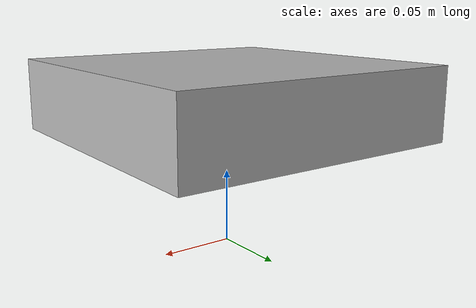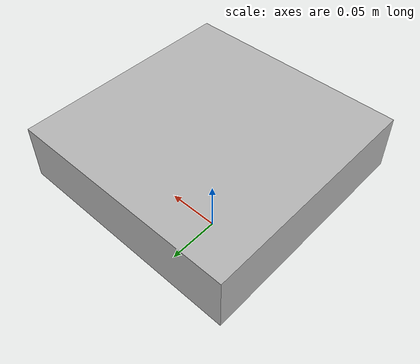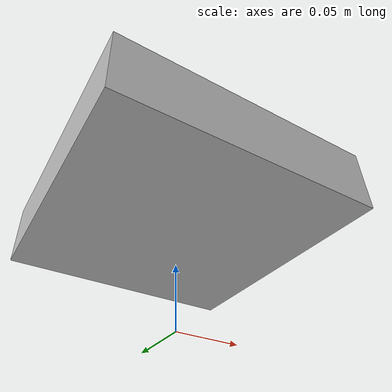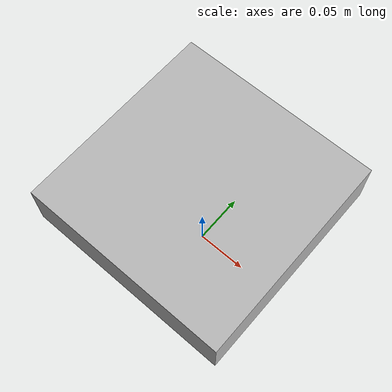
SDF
<?xml version="1.0" ?>
<sdf version="1.6">
  <model name="textured_shapes">
    <pose>0 0 0.1 0 0 0</pose>
    <link name="box">
      <pose>0 0 0 0 0 0</pose>
      <collision name="collision">
        <geometry>
          <box>
            <size>.2 .2 .05</size>
          </box>
        </geometry>
      </collision>
      <visual name="visual">
        <geometry>
          <box>
            <size>.2 .2 .05 </size>
          </box>
        </geometry>
        <material>
          <script>
            <uri>model://textured_shapes/materials/scripts</uri>
            <uri>model://textured_shapes/materials/textures</uri>
            <name>TexturedShape/Squares</name>
          </script>
        </material>
      </visual>
    </link>

  </model>
</sdf>
